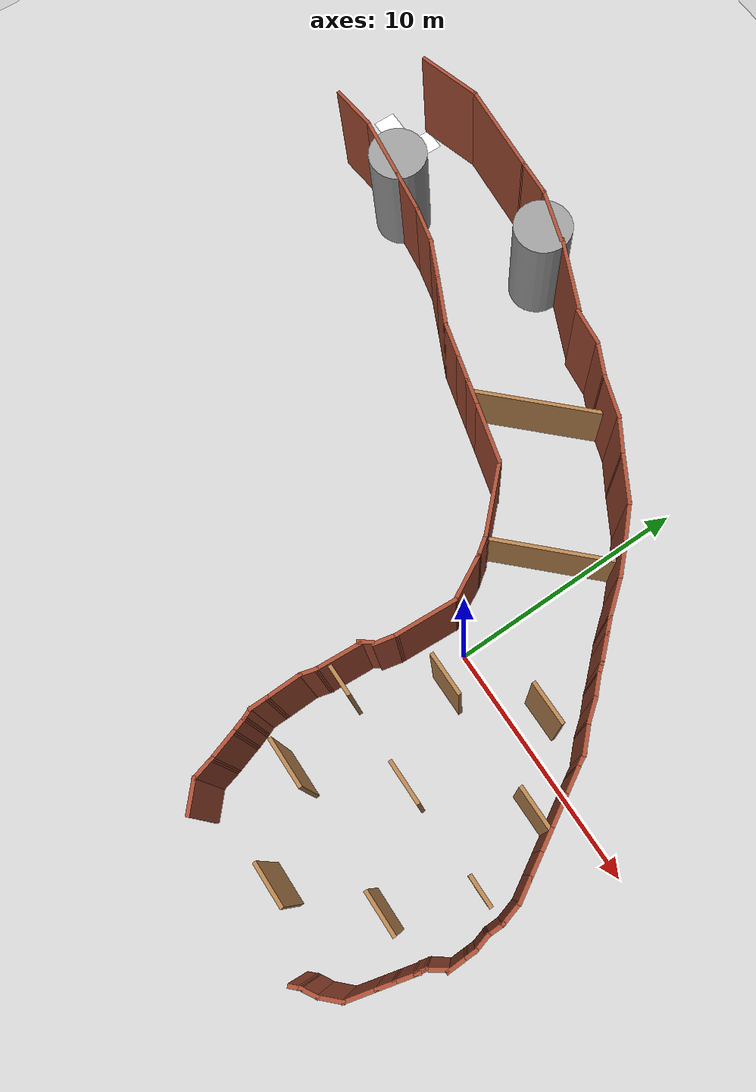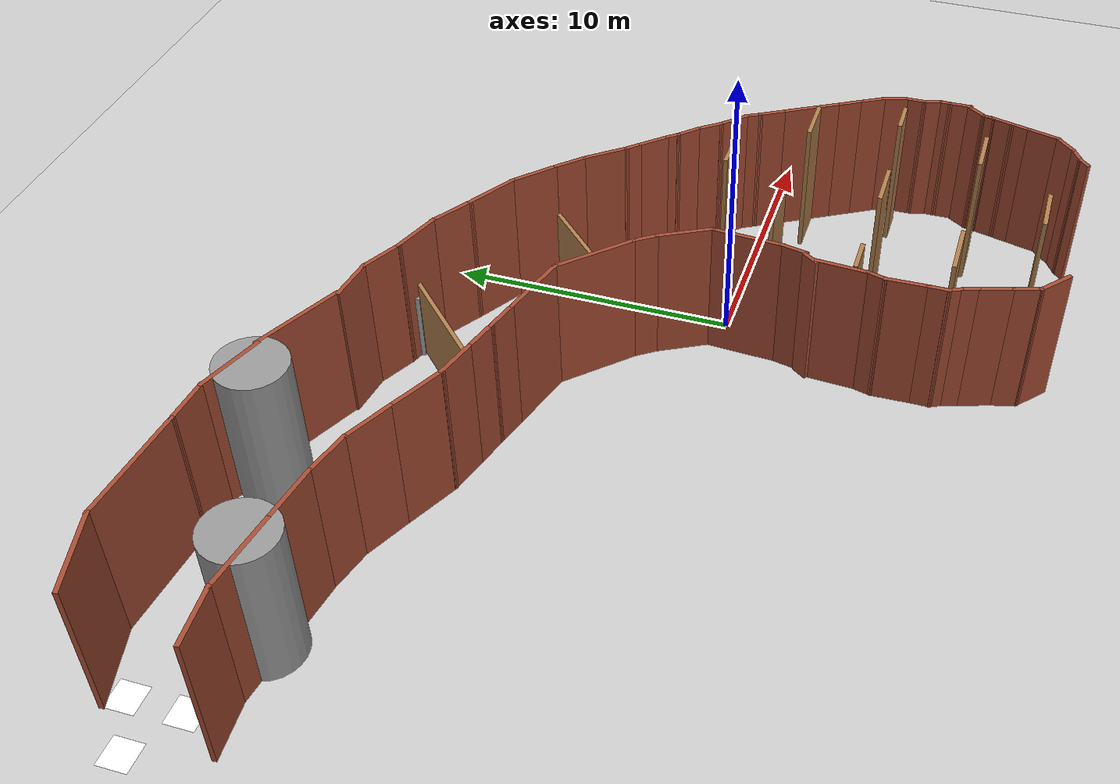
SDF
<sdf version="1.6">
 <world name="default">
  <light name="sun" type="directional">
   <pose>0 0 10 0 -0 0</pose>
   <diffuse>0.8 0.8 0.8 1</diffuse>
   <specular>0.2 0.2 0.2 1</specular>
   <attenuation>
    <range>1000</range>
    <constant>0.9</constant>
    <linear>0.01</linear>
    <quadratic>0.001</quadratic>
   </attenuation>
   <direction>-0.5 0.1 -0.9</direction>
  </light>
  <model name="ground_plane">
   <static>1</static>
   <link name="link">
    <collision name="collision">
     <geometry><plane><normal>0 0 1</normal><size>100 100</size></plane></geometry>
     <surface><friction><ode><mu>100</mu><mu2>50</mu2></ode></friction></surface>
    </collision>
    <visual name="visual">
     <cast_shadows>0</cast_shadows>
     <geometry><plane><normal>0 0 1</normal><size>100 100</size></plane></geometry>
     <material>
      <script><uri>file://media/materials/scripts/gazebo.material</uri><name>Gazebo/Grey</name></script>
     </material>
    </visual>
   </link>
  </model>
  <gravity>0 0 -9.8</gravity>
  <magnetic_field>6e-06 2.3e-05 -4.2e-05</magnetic_field>
  <atmosphere type="adiabatic"/>
  <physics name="default_physics" default="0" type="ode">
   <max_step_size>0.001</max_step_size>
   <real_time_factor>1</real_time_factor>
   <real_time_update_rate>1000</real_time_update_rate>
  </physics>
  <scene><ambient>0.4 0.4 0.4 1</ambient><background>0.7 0.7 0.7 1</background><shadows>1</shadows></scene>
  <spherical_coordinates>
   <surface_model>EARTH_WGS84</surface_model>
   <latitude_deg>0</latitude_deg>
   <longitude_deg>0</longitude_deg>
   <elevation>0</elevation>
   <heading_deg>0</heading_deg>
  </spherical_coordinates>
  <model name="testing_world2">
   <pose>-6.2826 1.00694 0 0 -0 0</pose>
   <link name="Wall_100">
    <collision name="Wall_100_Collision">
     <geometry><box><size>1.5 0.15 5</size></box></geometry>
     <pose>0 0 2.5 0 -0 0</pose>
    </collision>
    <visual name="Wall_100_Visual">
     <pose>0 0 2.5 0 -0 0</pose>
     <geometry><box><size>1.5 0.15 5</size></box></geometry>
     <material>
      <script><uri>file://media/materials/scripts/gazebo.material</uri><name>Gazebo/Bricks</name></script>
      <ambient>1 1 1 1</ambient>
     </material>
     <meta><layer>0</layer></meta>
    </visual>
    <pose>-3.2314 5.01256 0 0 -0 2.88008</pose>
   </link>
   <link name="Wall_101">
    <collision name="Wall_101_Collision">
     <geometry><box><size>2.1252 0.15 5</size></box></geometry>
     <pose>0 0 2.5 0 -0 0</pose>
    </collision>
    <visual name="Wall_101_Visual">
     <pose>0 0 2.5 0 -0 0</pose>
     <geometry><box><size>2.1252 0.15 5</size></box></geometry>
     <material>
      <script><uri>file://media/materials/scripts/gazebo.material</uri><name>Gazebo/Bricks</name></script>
      <ambient>1 1 1 1</ambient>
     </material>
     <meta><layer>0</layer></meta>
    </visual>
    <pose>-4.7744 5.61306 0 0 -0 2.69561</pose>
   </link>
   <link name="Wall_102">
    <collision name="Wall_102_Collision">
     <geometry><box><size>1.85518 0.15 5</size></box></geometry>
     <pose>0 0 2.5 0 -0 0</pose>
    </collision>
    <visual name="Wall_102_Visual">
     <pose>0 0 2.5 0 -0 0</pose>
     <geometry><box><size>1.85518 0.15 5</size></box></geometry>
     <material>
      <script><uri>file://media/materials/scripts/gazebo.material</uri><name>Gazebo/Bricks</name></script>
      <ambient>1 1 1 1</ambient>
     </material>
     <meta><layer>0</layer></meta>
    </visual>
    <pose>-6.4384 6.39856 0 0 -0 2.70628</pose>
   </link>
   <link name="Wall_103">
    <collision name="Wall_103_Collision">
     <geometry><box><size>1.67479 0.15 5</size></box></geometry>
     <pose>0 0 2.5 0 -0 0</pose>
    </collision>
    <visual name="Wall_103_Visual">
     <pose>0 0 2.5 0 -0 0</pose>
     <geometry><box><size>1.67479 0.15 5</size></box></geometry>
     <material>
      <script><uri>file://media/materials/scripts/gazebo.material</uri><name>Gazebo/Bricks</name></script>
      <ambient>1 1 1 1</ambient>
     </material>
     <meta><layer>0</layer></meta>
    </visual>
    <pose>-7.9534 6.93406 0 0 -0 2.9087</pose>
   </link>
   <link name="Wall_105">
    <collision name="Wall_105_Collision">
     <geometry><box><size>2.42474 0.15 5</size></box></geometry>
     <pose>0 0 2.5 0 -0 0</pose>
    </collision>
    <visual name="Wall_105_Visual">
     <pose>0 0 2.5 0 -0 0</pose>
     <geometry><box><size>2.42474 0.15 5</size></box></geometry>
     <material>
      <script><uri>file://media/materials/scripts/gazebo.material</uri><name>Gazebo/Bricks</name></script>
      <ambient>1 1 1 1</ambient>
     </material>
     <meta><layer>0</layer></meta>
    </visual>
    <pose>-5.40438 11.3274 0 0 -0 -0.324492</pose>
   </link>
   <link name="Wall_106">
    <collision name="Wall_106_Collision">
     <geometry><box><size>3.29315 0.15 5</size></box></geometry>
     <pose>0 0 2.5 0 -0 0</pose>
    </collision>
    <visual name="Wall_106_Visual">
     <pose>0 0 2.5 0 -0 0</pose>
     <geometry><box><size>3.29315 0.15 5</size></box></geometry>
     <material>
      <script><uri>file://media/materials/scripts/gazebo.material</uri><name>Gazebo/Bricks</name></script>
      <ambient>1 1 1 1</ambient>
     </material>
     <meta><layer>0</layer></meta>
    </visual>
    <pose>-2.89356 10.3806 0 0 -0 -0.423395</pose>
   </link>
   <link name="Wall_107">
    <collision name="Wall_107_Collision">
     <geometry><box><size>1.63925 0.15 5</size></box></geometry>
     <pose>0 0 2.5 0 -0 0</pose>
    </collision>
    <visual name="Wall_107_Visual">
     <pose>0 0 2.5 0 -0 0</pose>
     <geometry><box><size>1.63925 0.15 5</size></box></geometry>
     <material>
      <script><uri>file://media/materials/scripts/gazebo.material</uri><name>Gazebo/Bricks</name></script>
      <ambient>1 1 1 1</ambient>
     </material>
     <meta><layer>0</layer></meta>
    </visual>
    <pose>-0.721077 9.58774 0 0 -0 -0.11532</pose>
   </link>
   <link name="Wall_108">
    <collision name="Wall_108_Collision">
     <geometry><box><size>1.58734 0.15 5</size></box></geometry>
     <pose>0 0 2.5 0 -0 0</pose>
    </collision>
    <visual name="Wall_108_Visual">
     <pose>0 0 2.5 0 -0 0</pose>
     <geometry><box><size>1.58734 0.15 5</size></box></geometry>
     <material>
      <script><uri>file://media/materials/scripts/gazebo.material</uri><name>Gazebo/Bricks</name></script>
      <ambient>1 1 1 1</ambient>
     </material>
     <meta><layer>0</layer></meta>
    </visual>
    <pose>0.664603 9.18756 0 0 -0 -0.453066</pose>
   </link>
   <link name="Wall_109">
    <collision name="Wall_109_Collision">
     <geometry><box><size>1.84103 0.15 5</size></box></geometry>
     <pose>0 0 2.5 0 -0 0</pose>
    </collision>
    <visual name="Wall_109_Visual">
     <pose>0 0 2.5 0 -0 0</pose>
     <geometry><box><size>1.84103 0.15 5</size></box></geometry>
     <material>
      <script><uri>file://media/materials/scripts/gazebo.material</uri><name>Gazebo/Bricks</name></script>
      <ambient>1 1 1 1</ambient>
     </material>
     <meta><layer>0</layer></meta>
    </visual>
    <pose>2.1116 8.60306 0 0 -0 -0.325118</pose>
   </link>
   <link name="Wall_110">
    <collision name="Wall_110_Collision">
     <geometry><box><size>1.66428 0.15 5</size></box></geometry>
     <pose>0 0 2.5 0 -0 0</pose>
    </collision>
    <visual name="Wall_110_Visual">
     <pose>0 0 2.5 0 -0 0</pose>
     <geometry><box><size>1.66428 0.15 5</size></box></geometry>
     <material>
      <script><uri>file://media/materials/scripts/gazebo.material</uri><name>Gazebo/Bricks</name></script>
      <ambient>1 1 1 1</ambient>
     </material>
     <meta><layer>0</layer></meta>
    </visual>
    <pose>3.5586 7.93806 0 0 -0 -0.5488</pose>
   </link>
   <link name="Wall_111">
    <collision name="Wall_111_Collision">
     <geometry><box><size>1.99985 0.15 5</size></box></geometry>
     <pose>0 0 2.5 0 -0 0</pose>
    </collision>
    <visual name="Wall_111_Visual">
     <pose>0 0 2.5 0 -0 0</pose>
     <geometry><box><size>1.99985 0.15 5</size></box></geometry>
     <material>
      <script><uri>file://media/materials/scripts/gazebo.material</uri><name>Gazebo/Bricks</name></script>
      <ambient>1 1 1 1</ambient>
     </material>
     <meta><layer>0</layer></meta>
    </visual>
    <pose>5.0056 7.08006 0 0 -0 -0.524107</pose>
   </link>
   <link name="Wall_112">
    <collision name="Wall_112_Collision">
     <geometry><box><size>1.82407 0.15 5</size></box></geometry>
     <pose>0 0 2.5 0 -0 0</pose>
    </collision>
    <visual name="Wall_112_Visual">
     <pose>0 0 2.5 0 -0 0</pose>
     <geometry><box><size>1.82407 0.15 5</size></box></geometry>
     <material>
      <script><uri>file://media/materials/scripts/gazebo.material</uri><name>Gazebo/Bricks</name></script>
      <ambient>1 1 1 1</ambient>
     </material>
     <meta><layer>0</layer></meta>
    </visual>
    <pose>6.4191 6.04656 0 0 -0 -0.74991</pose>
   </link>
   <link name="Wall_113">
    <collision name="Wall_113_Collision">
     <geometry><box><size>1.25 0.15 5</size></box></geometry>
     <pose>0 0 2.5 0 -0 0</pose>
    </collision>
    <visual name="Wall_113_Visual">
     <pose>0 0 2.5 0 -0 0</pose>
     <geometry><box><size>1.25 0.15 5</size></box></geometry>
     <material>
      <script><uri>file://media/materials/scripts/gazebo.material</uri><name>Gazebo/Bricks</name></script>
      <ambient>1 1 1 1</ambient>
     </material>
     <meta><layer>0</layer></meta>
    </visual>
    <pose>7.4206 5.08706 0 0 -0 -0.785398</pose>
   </link>
   <link name="Wall_114">
    <collision name="Wall_114_Collision">
     <geometry><box><size>1.69801 0.15 5</size></box></geometry>
     <pose>0 0 2.5 0 -0 0</pose>
    </collision>
    <visual name="Wall_114_Visual">
     <pose>0 0 2.5 0 -0 0</pose>
     <geometry><box><size>1.69801 0.15 5</size></box></geometry>
     <material>
      <script><uri>file://media/materials/scripts/gazebo.material</uri><name>Gazebo/Bricks</name></script>
      <ambient>1 1 1 1</ambient>
     </material>
     <meta><layer>0</layer></meta>
    </visual>
    <pose>8.2976 4.09756 0 0 -0 -0.888386</pose>
   </link>
   <link name="Wall_115">
    <collision name="Wall_115_Collision">
     <geometry><box><size>0.730463 0.15 5</size></box></geometry>
     <pose>0 0 2.5 0 -0 0</pose>
    </collision>
    <visual name="Wall_115_Visual">
     <pose>0 0 2.5 0 -0 0</pose>
     <geometry><box><size>0.730463 0.15 5</size></box></geometry>
     <material>
      <script><uri>file://media/materials/scripts/gazebo.material</uri><name>Gazebo/Bricks</name></script>
      <ambient>1 1 1 1</ambient>
     </material>
     <meta><layer>0</layer></meta>
    </visual>
    <pose>8.9846 3.28556 0 0 -0 -0.815839</pose>
   </link>
   <link name="Wall_116">
    <collision name="Wall_116_Collision">
     <geometry><box><size>1.21135 0.15 5</size></box></geometry>
     <pose>0 0 2.5 0 -0 0</pose>
    </collision>
    <visual name="Wall_116_Visual">
     <pose>0 0 2.5 0 -0 0</pose>
     <geometry><box><size>1.21135 0.15 5</size></box></geometry>
     <material>
      <script><uri>file://media/materials/scripts/gazebo.material</uri><name>Gazebo/Bricks</name></script>
      <ambient>1 1 1 1</ambient>
     </material>
     <meta><layer>0</layer></meta>
    </visual>
    <pose>9.5451 2.68556 0 0 -0 -0.821383</pose>
   </link>
   <link name="Wall_117">
    <collision name="Wall_117_Collision">
     <geometry><box><size>0.545905 0.15 5</size></box></geometry>
     <pose>0 0 2.5 0 -0 0</pose>
    </collision>
    <visual name="Wall_117_Visual">
     <pose>0 0 2.5 0 -0 0</pose>
     <geometry><box><size>0.545905 0.15 5</size></box></geometry>
     <material>
      <script><uri>file://media/materials/scripts/gazebo.material</uri><name>Gazebo/Bricks</name></script>
      <ambient>1 1 1 1</ambient>
     </material>
     <meta><layer>0</layer></meta>
    </visual>
    <pose>10.0306 2.14256 0 0 -0 -0.894479</pose>
   </link>
   <link name="Wall_118">
    <collision name="Wall_118_Collision">
     <geometry><box><size>1 0.15 5</size></box></geometry>
     <pose>0 0 2.5 0 -0 0</pose>
    </collision>
    <visual name="Wall_118_Visual">
     <pose>0 0 2.5 0 -0 0</pose>
     <geometry><box><size>1 0.15 5</size></box></geometry>
     <material>
      <script><uri>file://media/materials/scripts/gazebo.material</uri><name>Gazebo/Bricks</name></script>
      <ambient>1 1 1 1</ambient>
     </material>
     <meta><layer>0</layer></meta>
    </visual>
    <pose>10.4551 1.68756 0 0 -0 -0.785398</pose>
   </link>
   <link name="Wall_119">
    <collision name="Wall_119_Collision">
     <geometry><box><size>0.997194 0.15 5</size></box></geometry>
     <pose>0 0 2.5 0 -0 0</pose>
    </collision>
    <visual name="Wall_119_Visual">
     <pose>0 0 2.5 0 -0 0</pose>
     <geometry><box><size>0.997194 0.15 5</size></box></geometry>
     <material>
      <script><uri>file://media/materials/scripts/gazebo.material</uri><name>Gazebo/Bricks</name></script>
      <ambient>1 1 1 1</ambient>
     </material>
     <meta><layer>0</layer></meta>
    </visual>
    <pose>11.0151 1.05206 0 0 -0 -0.911719</pose>
   </link>
   <link name="Wall_120">
    <collision name="Wall_120_Collision">
     <geometry><box><size>1.25 0.15 5</size></box></geometry>
     <pose>0 0 2.5 0 -0 0</pose>
    </collision>
    <visual name="Wall_120_Visual">
     <pose>0 0 2.5 0 -0 0</pose>
     <geometry><box><size>1.25 0.15 5</size></box></geometry>
     <material>
      <script><uri>file://media/materials/scripts/gazebo.material</uri><name>Gazebo/Bricks</name></script>
      <ambient>1 1 1 1</ambient>
     </material>
     <meta><layer>0</layer></meta>
    </visual>
    <pose>11.6636 0.328558 0 0 -0 -0.784755</pose>
   </link>
   <link name="Wall_122">
    <collision name="Wall_122_Collision">
     <geometry><box><size>2 0.15 5</size></box></geometry>
     <pose>0 0 2.5 0 -0 0</pose>
    </collision>
    <visual name="Wall_122_Visual">
     <pose>0 0 2.5 0 -0 0</pose>
     <geometry><box><size>2 0.15 5</size></box></geometry>
     <material>
      <script><uri>file://media/materials/scripts/gazebo.material</uri><name>Gazebo/Wood</name></script>
      <ambient>1 1 1 1</ambient>
     </material>
     <meta><layer>0</layer></meta>
    </visual>
    <pose>6.5146 -8.52794 0 0 -0 0</pose>
   </link>
   <link name="Wall_125">
    <collision name="Wall_125_Collision">
     <geometry><box><size>1.75 0.15 5</size></box></geometry>
     <pose>0 0 2.5 0 -0 0</pose>
    </collision>
    <visual name="Wall_125_Visual">
     <pose>0 0 2.5 0 -0 0</pose>
     <geometry><box><size>1.75 0.15 5</size></box></geometry>
     <material>
      <script><uri>file://media/materials/scripts/gazebo.material</uri><name>Gazebo/Wood</name></script>
      <ambient>1 1 1 1</ambient>
     </material>
     <meta><layer>0</layer></meta>
    </visual>
    <pose>9.5276 -11.0509 0 0 -0 0</pose>
   </link>
   <link name="Wall_127">
    <collision name="Wall_127_Collision">
     <geometry><box><size>1.75 0.15 5</size></box></geometry>
     <pose>0 0 2.5 0 -0 0</pose>
    </collision>
    <visual name="Wall_127_Visual">
     <pose>0 0 2.5 0 -0 0</pose>
     <geometry><box><size>1.75 0.15 5</size></box></geometry>
     <material>
      <script><uri>file://media/materials/scripts/gazebo.material</uri><name>Gazebo/Wood</name></script>
      <ambient>1 1 1 1</ambient>
     </material>
     <meta><layer>0</layer></meta>
    </visual>
    <pose>12.3496 -8.52794 0 0 -0 0</pose>
   </link>
   <link name="Wall_128">
    <collision name="Wall_128_Collision">
     <geometry><box><size>0.15 0.15 2.5</size></box></geometry>
     <pose>0 0 1.25 0 -0 0</pose>
    </collision>
    <visual name="Wall_128_Visual">
     <pose>0 0 1.25 0 -0 0</pose>
     <geometry><box><size>0.15 0.15 2.5</size></box></geometry>
     <material>
      <script><uri>file://media/materials/scripts/gazebo.material</uri><name>Gazebo/Grey</name></script>
      <ambient>1 1 1 1</ambient>
     </material>
     <meta><layer>0</layer></meta>
    </visual>
    <pose>13.1496 -8.52794 0 0 -0 0</pose>
   </link>
   <link name="Wall_130">
    <collision name="Wall_130_Collision">
     <geometry><box><size>1.75 0.15 5</size></box></geometry>
     <pose>0 0 2.5 0 -0 0</pose>
    </collision>
    <visual name="Wall_130_Visual">
     <pose>0 0 2.5 0 -0 0</pose>
     <geometry><box><size>1.75 0.15 5</size></box></geometry>
     <material>
      <script><uri>file://media/materials/scripts/gazebo.material</uri><name>Gazebo/Wood</name></script>
      <ambient>1 1 1 1</ambient>
     </material>
     <meta><layer>0</layer></meta>
    </visual>
    <pose>9.3426 -5.57494 0 0 -0 0</pose>
   </link>
   <link name="Wall_132">
    <collision name="Wall_132_Collision">
     <geometry><box><size>1.25 0.15 5</size></box></geometry>
     <pose>0 0 2.5 0 -0 0</pose>
    </collision>
    <visual name="Wall_132_Visual">
     <pose>0 0 2.5 0 -0 0</pose>
     <geometry><box><size>1.25 0.15 5</size></box></geometry>
     <material>
      <script><uri>file://media/materials/scripts/gazebo.material</uri><name>Gazebo/Wood</name></script>
      <ambient>1 1 1 1</ambient>
     </material>
     <meta><layer>0</layer></meta>
    </visual>
    <pose>5.2236 -5.51294 0 0 -0 3.14159</pose>
   </link>
   <link name="Wall_134">
    <collision name="Wall_134_Collision">
     <geometry><box><size>1.25 0.15 5</size></box></geometry>
     <pose>0 0 2.5 0 -0 0</pose>
    </collision>
    <visual name="Wall_134_Visual">
     <pose>0 0 2.5 0 -0 0</pose>
     <geometry><box><size>1.25 0.15 5</size></box></geometry>
     <material>
      <script><uri>file://media/materials/scripts/gazebo.material</uri><name>Gazebo/Wood</name></script>
      <ambient>1 1 1 1</ambient>
     </material>
     <meta><layer>0</layer></meta>
    </visual>
    <pose>13.6456 -5.45094 0 0 -0 0</pose>
   </link>
   <link name="Wall_136">
    <collision name="Wall_136_Collision">
     <geometry><box><size>1.75 0.15 5</size></box></geometry>
     <pose>0 0 2.5 0 -0 0</pose>
    </collision>
    <visual name="Wall_136_Visual">
     <pose>0 0 2.5 0 -0 0</pose>
     <geometry><box><size>1.75 0.15 5</size></box></geometry>
     <material>
      <script><uri>file://media/materials/scripts/gazebo.material</uri><name>Gazebo/Wood</name></script>
      <ambient>1 1 1 1</ambient>
     </material>
     <meta><layer>0</layer></meta>
    </visual>
    <pose>7.1276 -2.37494 0 0 -0 0</pose>
   </link>
   <link name="Wall_138">
    <collision name="Wall_138_Collision">
     <geometry><box><size>1.75 0.15 5</size></box></geometry>
     <pose>0 0 2.5 0 -0 0</pose>
    </collision>
    <visual name="Wall_138_Visual">
     <pose>0 0 2.5 0 -0 0</pose>
     <geometry><box><size>1.75 0.15 5</size></box></geometry>
     <material>
      <script><uri>file://media/materials/scripts/gazebo.material</uri><name>Gazebo/Wood</name></script>
      <ambient>1 1 1 1</ambient>
     </material>
     <meta><layer>0</layer></meta>
    </visual>
    <pose>12.5426 -2.43694 0 0 -0 0</pose>
   </link>
   <link name="Wall_140">
    <collision name="Wall_140_Collision">
     <geometry><box><size>1.75 0.15 5</size></box></geometry>
     <pose>0 0 2.5 0 -0 0</pose>
    </collision>
    <visual name="Wall_140_Visual">
     <pose>0 0 2.5 0 -0 0</pose>
     <geometry><box><size>1.75 0.15 5</size></box></geometry>
     <material>
      <script><uri>file://media/materials/scripts/gazebo.material</uri><name>Gazebo/Wood</name></script>
      <ambient>1 1 1 1</ambient>
     </material>
     <meta><layer>0</layer></meta>
    </visual>
    <pose>9.9586 -0.036942 0 0 -0 0</pose>
   </link>
   <link name="Wall_142">
    <collision name="Wall_142_Collision">
     <geometry><box><size>5 0.15 3</size></box></geometry>
     <pose>0 0 1.5 0 -0 0</pose>
    </collision>
    <visual name="Wall_142_Visual">
     <pose>0 0 1.5 0 -0 0</pose>
     <geometry><box><size>5 0.15 3</size></box></geometry>
     <material>
      <script><uri>file://media/materials/scripts/gazebo.material</uri><name>Gazebo/Wood</name></script>
      <ambient>1 1 1 1</ambient>
     </material>
     <meta><layer>0</layer></meta>
    </visual>
    <pose>5.3171 3.76156 0 0 -0 -2.35619</pose>
   </link>
   <link name="Wall_144">
    <collision name="Wall_144_Collision">
     <geometry><box><size>5.75 0.15 3</size></box></geometry>
     <pose>0 0 1.5 0 -0 0</pose>
    </collision>
    <visual name="Wall_144_Visual">
     <pose>0 0 1.5 0 -0 0</pose>
     <geometry><box><size>5.75 0.15 3</size></box></geometry>
     <material>
      <script><uri>file://media/materials/scripts/gazebo.material</uri><name>Gazebo/Wood</name></script>
      <ambient>1 1 1 1</ambient>
     </material>
     <meta><layer>0</layer></meta>
    </visual>
    <pose>0.080438 6.77407 0 0 -0 -2.35619</pose>
   </link>
   <link name="Wall_146">
    <collision name="Wall_146_Collision">
     <geometry><box><size>1.64622 0.15 5</size></box></geometry>
     <pose>0 0 2.5 0 -0 0</pose>
    </collision>
    <visual name="Wall_146_Visual">
     <pose>0 0 2.5 0 -0 0</pose>
     <geometry><box><size>1.64622 0.15 5</size></box></geometry>
     <material>
      <script><uri>file://media/materials/scripts/gazebo.material</uri><name>Gazebo/Bricks</name></script>
      <ambient>1 1 1 1</ambient>
     </material>
     <meta><layer>0</layer></meta>
    </visual>
    <pose>-7.2289 11.7401 0 0 -0 3.07471</pose>
   </link>
   <link name="Wall_147">
    <collision name="Wall_147_Collision">
     <geometry><box><size>4.0618 0.15 5</size></box></geometry>
     <pose>0 0 2.5 0 -0 0</pose>
    </collision>
    <visual name="Wall_147_Visual">
     <pose>0 0 2.5 0 -0 0</pose>
     <geometry><box><size>4.0618 0.15 5</size></box></geometry>
     <material>
      <script><uri>file://media/materials/scripts/gazebo.material</uri><name>Gazebo/Bricks</name></script>
      <ambient>1 1 1 1</ambient>
     </material>
     <meta><layer>0</layer></meta>
    </visual>
    <pose>-9.9254 11.9441 0 0 -0 3.06278</pose>
   </link>
   <link name="Wall_148">
    <collision name="Wall_148_Collision">
     <geometry><box><size>2.84532 0.15 5</size></box></geometry>
     <pose>0 0 2.5 0 -0 0</pose>
    </collision>
    <visual name="Wall_148_Visual">
     <pose>0 0 2.5 0 -0 0</pose>
     <geometry><box><size>2.84532 0.15 5</size></box></geometry>
     <material>
      <script><uri>file://media/materials/scripts/gazebo.material</uri><name>Gazebo/Bricks</name></script>
      <ambient>1 1 1 1</ambient>
     </material>
     <meta><layer>0</layer></meta>
    </visual>
    <pose>-13.1714 11.7286 0 0 -0 -2.86385</pose>
   </link>
   <link name="Wall_150">
    <collision name="Wall_150_Collision">
     <geometry><box><size>1.95108 0.15 5</size></box></geometry>
     <pose>0 0 2.5 0 -0 0</pose>
    </collision>
    <visual name="Wall_150_Visual">
     <pose>0 0 2.5 0 -0 0</pose>
     <geometry><box><size>1.95108 0.15 5</size></box></geometry>
     <material>
      <script><uri>file://media/materials/scripts/gazebo.material</uri><name>Gazebo/Bricks</name></script>
      <ambient>1 1 1 1</ambient>
     </material>
     <meta><layer>0</layer></meta>
    </visual>
    <pose>-9.5874 7.23306 0 0 -0 3.00456</pose>
   </link>
   <link name="Wall_151">
    <collision name="Wall_151_Collision">
     <geometry><box><size>2.87083 0.15 5</size></box></geometry>
     <pose>0 0 2.5 0 -0 0</pose>
    </collision>
    <visual name="Wall_151_Visual">
     <pose>0 0 2.5 0 -0 0</pose>
     <geometry><box><size>2.87083 0.15 5</size></box></geometry>
     <material>
      <script><uri>file://media/materials/scripts/gazebo.material</uri><name>Gazebo/Bricks</name></script>
      <ambient>1 1 1 1</ambient>
     </material>
     <meta><layer>0</layer></meta>
    </visual>
    <pose>-11.8274 7.53856 0 0 -0 3.00703</pose>
   </link>
   <link name="Wall_152">
    <collision name="Wall_152_Collision">
     <geometry><box><size>2.03705 0.15 5</size></box></geometry>
     <pose>0 0 2.5 0 -0 0</pose>
    </collision>
    <visual name="Wall_152_Visual">
     <pose>0 0 2.5 0 -0 0</pose>
     <geometry><box><size>2.03705 0.15 5</size></box></geometry>
     <material>
      <script><uri>file://media/materials/scripts/gazebo.material</uri><name>Gazebo/Bricks</name></script>
      <ambient>1 1 1 1</ambient>
     </material>
     <meta><layer>0</layer></meta>
    </visual>
    <pose>-14.1144 7.62906 0 0 -0 -3.04393</pose>
   </link>
   <link name="Wall_52">
    <collision name="Wall_52_Collision">
     <geometry><box><size>0.557596 0.15 2.5</size></box></geometry>
     <pose>0 0 1.25 0 -0 0</pose>
    </collision>
    <visual name="Wall_52_Visual">
     <pose>0 0 1.25 0 -0 0</pose>
     <geometry><box><size>0.557596 0.15 2.5</size></box></geometry>
     <material>
      <script><uri>file://media/materials/scripts/gazebo.material</uri><name>Gazebo/Grey</name></script>
      <ambient>1 1 1 1</ambient>
     </material>
     <meta><layer>0</layer></meta>
    </visual>
    <pose>1.91079 8.72071 0 0 -0 -2.77151</pose>
   </link>
   <link name="Wall_58">
    <collision name="Wall_58_Collision">
     <geometry><box><size>0.5 0.15 5</size></box></geometry>
     <pose>0 0 2.5 0 -0 0</pose>
    </collision>
    <visual name="Wall_58_Visual">
     <pose>0 0 2.5 0 -0 0</pose>
     <geometry><box><size>0.5 0.15 5</size></box></geometry>
     <material>
      <script><uri>file://media/materials/scripts/gazebo.material</uri><name>Gazebo/Bricks</name></script>
      <ambient>1 1 1 1</ambient>
     </material>
     <meta><layer>0</layer></meta>
    </visual>
    <pose>12.6456 -11.9609 0 0 -0 0.785398</pose>
   </link>
   <link name="Wall_59">
    <collision name="Wall_59_Collision">
     <geometry><box><size>0.75 0.15 5</size></box></geometry>
     <pose>0 0 2.5 0 -0 0</pose>
    </collision>
    <visual name="Wall_59_Visual">
     <pose>0 0 2.5 0 -0 0</pose>
     <geometry><box><size>0.75 0.15 5</size></box></geometry>
     <material>
      <script><uri>file://media/materials/scripts/gazebo.material</uri><name>Gazebo/Bricks</name></script>
      <ambient>1 1 1 1</ambient>
     </material>
     <meta><layer>0</layer></meta>
    </visual>
    <pose>13.0291 -11.6869 0 0 -0 0.524112</pose>
   </link>
   <link name="Wall_60">
    <collision name="Wall_60_Collision">
     <geometry><box><size>1 0.15 5</size></box></geometry>
     <pose>0 0 2.5 0 -0 0</pose>
    </collision>
    <visual name="Wall_60_Visual">
     <pose>0 0 2.5 0 -0 0</pose>
     <geometry><box><size>1 0.15 5</size></box></geometry>
     <material>
      <script><uri>file://media/materials/scripts/gazebo.material</uri><name>Gazebo/Bricks</name></script>
      <ambient>1 1 1 1</ambient>
     </material>
     <meta><layer>0</layer></meta>
    </visual>
    <pose>13.5891 -11.2364 0 0 -0 0.785398</pose>
   </link>
   <link name="Wall_61">
    <collision name="Wall_61_Collision">
     <geometry><box><size>1.25 0.15 5</size></box></geometry>
     <pose>0 0 2.5 0 -0 0</pose>
    </collision>
    <visual name="Wall_61_Visual">
     <pose>0 0 2.5 0 -0 0</pose>
     <geometry><box><size>1.25 0.15 5</size></box></geometry>
     <material>
      <script><uri>file://media/materials/scripts/gazebo.material</uri><name>Gazebo/Bricks</name></script>
      <ambient>1 1 1 1</ambient>
     </material>
     <meta><layer>0</layer></meta>
    </visual>
    <pose>14.0321 -10.4049 0 0 -0 1.30861</pose>
   </link>
   <link name="Wall_62">
    <collision name="Wall_62_Collision">
     <geometry><box><size>0.75 0.15 5</size></box></geometry>
     <pose>0 0 2.5 0 -0 0</pose>
    </collision>
    <visual name="Wall_62_Visual">
     <pose>0 0 2.5 0 -0 0</pose>
     <geometry><box><size>0.75 0.15 5</size></box></geometry>
     <material>
      <script><uri>file://media/materials/scripts/gazebo.material</uri><name>Gazebo/Bricks</name></script>
      <ambient>1 1 1 1</ambient>
     </material>
     <meta><layer>0</layer></meta>
    </visual>
    <pose>14.2521 -9.58394 0 0 -0 1.30966</pose>
   </link>
   <link name="Wall_63">
    <collision name="Wall_63_Collision">
     <geometry><box><size>1 0.15 5</size></box></geometry>
     <pose>0 0 2.5 0 -0 0</pose>
    </collision>
    <visual name="Wall_63_Visual">
     <pose>0 0 2.5 0 -0 0</pose>
     <geometry><box><size>1 0.15 5</size></box></geometry>
     <material>
      <script><uri>file://media/materials/scripts/gazebo.material</uri><name>Gazebo/Bricks</name></script>
      <ambient>1 1 1 1</ambient>
     </material>
     <meta><layer>0</layer></meta>
    </visual>
    <pose>14.4396 -8.88344 0 0 -0 1.30898</pose>
   </link>
   <link name="Wall_64">
    <collision name="Wall_64_Collision">
     <geometry><box><size>0.269614 0.15 5</size></box></geometry>
     <pose>0 0 2.5 0 -0 0</pose>
    </collision>
    <visual name="Wall_64_Visual">
     <pose>0 0 2.5 0 -0 0</pose>
     <geometry><box><size>0.269614 0.15 5</size></box></geometry>
     <material>
      <script><uri>file://media/materials/scripts/gazebo.material</uri><name>Gazebo/Bricks</name></script>
      <ambient>1 1 1 1</ambient>
     </material>
     <meta><layer>0</layer></meta>
    </visual>
    <pose>14.5216 -8.5258 0 0 -0 -2.05762</pose>
   </link>
   <link name="Wall_65">
    <collision name="Wall_65_Collision">
     <geometry><box><size>0.5 0.15 5</size></box></geometry>
     <pose>0 0 2.5 0 -0 0</pose>
    </collision>
    <visual name="Wall_65_Visual">
     <pose>0 0 2.5 0 -0 0</pose>
     <geometry><box><size>0.5 0.15 5</size></box></geometry>
     <material>
      <script><uri>file://media/materials/scripts/gazebo.material</uri><name>Gazebo/Bricks</name></script>
      <ambient>1 1 1 1</ambient>
     </material>
     <meta><layer>0</layer></meta>
    </visual>
    <pose>14.5389 -8.40962 0 0 -0 1.309</pose>
   </link>
   <link name="Wall_66">
    <collision name="Wall_66_Collision">
     <geometry><box><size>0.814358 0.15 5</size></box></geometry>
     <pose>0 0 2.5 0 -0 0</pose>
    </collision>
    <visual name="Wall_66_Visual">
     <pose>0 0 2.5 0 -0 0</pose>
     <geometry><box><size>0.814358 0.15 5</size></box></geometry>
     <material>
      <script><uri>file://media/materials/scripts/gazebo.material</uri><name>Gazebo/Bricks</name></script>
      <ambient>1 1 1 1</ambient>
     </material>
     <meta><layer>0</layer></meta>
    </visual>
    <pose>14.7771 -7.97013 0 0 -0 0.951303</pose>
   </link>
   <link name="Wall_67">
    <collision name="Wall_67_Collision">
     <geometry><box><size>0.891782 0.15 5</size></box></geometry>
     <pose>0 0 2.5 0 -0 0</pose>
    </collision>
    <visual name="Wall_67_Visual">
     <pose>0 0 2.5 0 -0 0</pose>
     <geometry><box><size>0.891782 0.15 5</size></box></geometry>
     <material>
      <script><uri>file://media/materials/scripts/gazebo.material</uri><name>Gazebo/Bricks</name></script>
      <ambient>1 1 1 1</ambient>
     </material>
     <meta><layer>0</layer></meta>
    </visual>
    <pose>15.0475 -7.32881 0 0 -0 1.58123</pose>
   </link>
   <link name="Wall_68">
    <collision name="Wall_68_Collision">
     <geometry><box><size>0.5 0.15 5</size></box></geometry>
     <pose>0 0 2.5 0 -0 0</pose>
    </collision>
    <visual name="Wall_68_Visual">
     <pose>0 0 2.5 0 -0 0</pose>
     <geometry><box><size>0.5 0.15 5</size></box></geometry>
     <material>
      <script><uri>file://media/materials/scripts/gazebo.material</uri><name>Gazebo/Bricks</name></script>
      <ambient>1 1 1 1</ambient>
     </material>
     <meta><layer>0</layer></meta>
    </visual>
    <pose>15.0436 -6.78294 0 0 -0 1.5708</pose>
   </link>
   <link name="Wall_69">
    <collision name="Wall_69_Collision">
     <geometry><box><size>0.75 0.15 5</size></box></geometry>
     <pose>0 0 2.5 0 -0 0</pose>
    </collision>
    <visual name="Wall_69_Visual">
     <pose>0 0 2.5 0 -0 0</pose>
     <geometry><box><size>0.75 0.15 5</size></box></geometry>
     <material>
      <script><uri>file://media/materials/scripts/gazebo.material</uri><name>Gazebo/Bricks</name></script>
      <ambient>1 1 1 1</ambient>
     </material>
     <meta><layer>0</layer></meta>
    </visual>
    <pose>14.9661 -6.31794 0 0 -0 1.83194</pose>
   </link>
   <link name="Wall_70">
    <collision name="Wall_70_Collision">
     <geometry><box><size>0.75 0.15 5</size></box></geometry>
     <pose>0 0 2.5 0 -0 0</pose>
    </collision>
    <visual name="Wall_70_Visual">
     <pose>0 0 2.5 0 -0 0</pose>
     <geometry><box><size>0.75 0.15 5</size></box></geometry>
     <material>
      <script><uri>file://media/materials/scripts/gazebo.material</uri><name>Gazebo/Bricks</name></script>
      <ambient>1 1 1 1</ambient>
     </material>
     <meta><layer>0</layer></meta>
    </visual>
    <pose>14.8886 -5.72794 0 0 -0 1.5708</pose>
   </link>
   <link name="Wall_71">
    <collision name="Wall_71_Collision">
     <geometry><box><size>1 0.15 5</size></box></geometry>
     <pose>0 0 2.5 0 -0 0</pose>
    </collision>
    <visual name="Wall_71_Visual">
     <pose>0 0 2.5 0 -0 0</pose>
     <geometry><box><size>1 0.15 5</size></box></geometry>
     <material>
      <script><uri>file://media/materials/scripts/gazebo.material</uri><name>Gazebo/Bricks</name></script>
      <ambient>1 1 1 1</ambient>
     </material>
     <meta><layer>0</layer></meta>
    </visual>
    <pose>14.7786 -5.01744 0 0 -0 1.83261</pose>
   </link>
   <link name="Wall_72">
    <collision name="Wall_72_Collision">
     <geometry><box><size>1 0.15 5</size></box></geometry>
     <pose>0 0 2.5 0 -0 0</pose>
    </collision>
    <visual name="Wall_72_Visual">
     <pose>0 0 2.5 0 -0 0</pose>
     <geometry><box><size>1 0.15 5</size></box></geometry>
     <material>
      <script><uri>file://media/materials/scripts/gazebo.material</uri><name>Gazebo/Bricks</name></script>
      <ambient>1 1 1 1</ambient>
     </material>
     <meta><layer>0</layer></meta>
    </visual>
    <pose>14.4561 -4.23894 0 0 -0 2.09447</pose>
   </link>
   <link name="Wall_73">
    <collision name="Wall_73_Collision">
     <geometry><box><size>1 0.15 5</size></box></geometry>
     <pose>0 0 2.5 0 -0 0</pose>
    </collision>
    <visual name="Wall_73_Visual">
     <pose>0 0 2.5 0 -0 0</pose>
     <geometry><box><size>1 0.15 5</size></box></geometry>
     <material>
      <script><uri>file://media/materials/scripts/gazebo.material</uri><name>Gazebo/Bricks</name></script>
      <ambient>1 1 1 1</ambient>
     </material>
     <meta><layer>0</layer></meta>
    </visual>
    <pose>14.0311 -3.50294 0 0 -0 2.09447</pose>
   </link>
   <link name="Wall_74">
    <collision name="Wall_74_Collision">
     <geometry><box><size>1 0.15 5</size></box></geometry>
     <pose>0 0 2.5 0 -0 0</pose>
    </collision>
    <visual name="Wall_74_Visual">
     <pose>0 0 2.5 0 -0 0</pose>
     <geometry><box><size>1 0.15 5</size></box></geometry>
     <material>
      <script><uri>file://media/materials/scripts/gazebo.material</uri><name>Gazebo/Bricks</name></script>
      <ambient>1 1 1 1</ambient>
     </material>
     <meta><layer>0</layer></meta>
    </visual>
    <pose>13.6061 -2.76694 0 0 -0 2.09447</pose>
   </link>
   <link name="Wall_75">
    <collision name="Wall_75_Collision">
     <geometry><box><size>1.5 0.15 5</size></box></geometry>
     <pose>0 0 2.5 0 -0 0</pose>
    </collision>
    <visual name="Wall_75_Visual">
     <pose>0 0 2.5 0 -0 0</pose>
     <geometry><box><size>1.5 0.15 5</size></box></geometry>
     <material>
      <script><uri>file://media/materials/scripts/gazebo.material</uri><name>Gazebo/Bricks</name></script>
      <ambient>1 1 1 1</ambient>
     </material>
     <meta><layer>0</layer></meta>
    </visual>
    <pose>13.0561 -1.81444 0 0 -0 2.09444</pose>
   </link>
   <link name="Wall_76">
    <collision name="Wall_76_Collision">
     <geometry><box><size>1 0.15 5</size></box></geometry>
     <pose>0 0 2.5 0 -0 0</pose>
    </collision>
    <visual name="Wall_76_Visual">
     <pose>0 0 2.5 0 -0 0</pose>
     <geometry><box><size>1 0.15 5</size></box></geometry>
     <material>
      <script><uri>file://media/materials/scripts/gazebo.material</uri><name>Gazebo/Bricks</name></script>
      <ambient>1 1 1 1</ambient>
     </material>
     <meta><layer>0</layer></meta>
    </visual>
    <pose>12.5061 -0.861942 0 0 -0 2.09447</pose>
   </link>
   <link name="Wall_77">
    <collision name="Wall_77_Collision">
     <geometry><box><size>0.646424 0.15 5</size></box></geometry>
     <pose>0 0 2.5 0 -0 0</pose>
    </collision>
    <visual name="Wall_77_Visual">
     <pose>0 0 2.5 0 -0 0</pose>
     <geometry><box><size>0.646424 0.15 5</size></box></geometry>
     <material>
      <script><uri>file://media/materials/scripts/gazebo.material</uri><name>Gazebo/Bricks</name></script>
      <ambient>1 1 1 1</ambient>
     </material>
     <meta><layer>0</layer></meta>
    </visual>
    <pose>12.1731 -0.276942 0 0 -0 2.0777</pose>
   </link>
   <link name="Wall_82">
    <collision name="Wall_82_Collision">
     <geometry><box><size>1.3402 0.15 5</size></box></geometry>
     <pose>0 0 2.5 0 -0 0</pose>
    </collision>
    <visual name="Wall_82_Visual">
     <pose>0 0 2.5 0 -0 0</pose>
     <geometry><box><size>1.3402 0.15 5</size></box></geometry>
     <material>
      <script><uri>file://media/materials/scripts/gazebo.material</uri><name>Gazebo/Bricks</name></script>
      <ambient>1 1 1 1</ambient>
     </material>
     <meta><layer>0</layer></meta>
    </visual>
    <pose>5.6661 -11.6959 0 0 -0 2.42932</pose>
   </link>
   <link name="Wall_83">
    <collision name="Wall_83_Collision">
     <geometry><box><size>1.00014 0.15 5</size></box></geometry>
     <pose>0 0 2.5 0 -0 0</pose>
    </collision>
    <visual name="Wall_83_Visual">
     <pose>0 0 2.5 0 -0 0</pose>
     <geometry><box><size>1.00014 0.15 5</size></box></geometry>
     <material>
      <script><uri>file://media/materials/scripts/gazebo.material</uri><name>Gazebo/Bricks</name></script>
      <ambient>1 1 1 1</ambient>
     </material>
     <meta><layer>0</layer></meta>
    </visual>
    <pose>5.1056 -10.8964 0 0 -0 1.83261</pose>
   </link>
   <link name="Wall_84">
    <collision name="Wall_84_Collision">
     <geometry><box><size>1.26767 0.15 5</size></box></geometry>
     <pose>0 0 2.5 0 -0 0</pose>
    </collision>
    <visual name="Wall_84_Visual">
     <pose>0 0 2.5 0 -0 0</pose>
     <geometry><box><size>1.26767 0.15 5</size></box></geometry>
     <material>
      <script><uri>file://media/materials/scripts/gazebo.material</uri><name>Gazebo/Bricks</name></script>
      <ambient>1 1 1 1</ambient>
     </material>
     <meta><layer>0</layer></meta>
    </visual>
    <pose>4.8226 -9.95444 0 0 -0 1.88548</pose>
   </link>
   <link name="Wall_85">
    <collision name="Wall_85_Collision">
     <geometry><box><size>0.718919 0.15 5</size></box></geometry>
     <pose>0 0 2.5 0 -0 0</pose>
    </collision>
    <visual name="Wall_85_Visual">
     <pose>0 0 2.5 0 -0 0</pose>
     <geometry><box><size>0.718919 0.15 5</size></box></geometry>
     <material>
      <script><uri>file://media/materials/scripts/gazebo.material</uri><name>Gazebo/Bricks</name></script>
      <ambient>1 1 1 1</ambient>
     </material>
     <meta><layer>0</layer></meta>
    </visual>
    <pose>4.5571 -9.15394 0 0 -0 1.902</pose>
   </link>
   <link name="Wall_86">
    <collision name="Wall_86_Collision">
     <geometry><box><size>0.516599 0.15 5</size></box></geometry>
     <pose>0 0 2.5 0 -0 0</pose>
    </collision>
    <visual name="Wall_86_Visual">
     <pose>0 0 2.5 0 -0 0</pose>
     <geometry><box><size>0.516599 0.15 5</size></box></geometry>
     <material>
      <script><uri>file://media/materials/scripts/gazebo.material</uri><name>Gazebo/Bricks</name></script>
      <ambient>1 1 1 1</ambient>
     </material>
     <meta><layer>0</layer></meta>
    </visual>
    <pose>4.3886 -8.71794 0 0 -0 1.99788</pose>
   </link>
   <link name="Wall_87">
    <collision name="Wall_87_Collision">
     <geometry><box><size>0.815074 0.15 5</size></box></geometry>
     <pose>0 0 2.5 0 -0 0</pose>
    </collision>
    <visual name="Wall_87_Visual">
     <pose>0 0 2.5 0 -0 0</pose>
     <geometry><box><size>0.815074 0.15 5</size></box></geometry>
     <material>
      <script><uri>file://media/materials/scripts/gazebo.material</uri><name>Gazebo/Bricks</name></script>
      <ambient>1 1 1 1</ambient>
     </material>
     <meta><layer>0</layer></meta>
    </visual>
    <pose>4.3126 -8.21844 0 0 -0 1.5708</pose>
   </link>
   <link name="Wall_88">
    <collision name="Wall_88_Collision">
     <geometry><box><size>1.498 0.15 5</size></box></geometry>
     <pose>0 0 2.5 0 -0 0</pose>
    </collision>
    <visual name="Wall_88_Visual">
     <pose>0 0 2.5 0 -0 0</pose>
     <geometry><box><size>1.498 0.15 5</size></box></geometry>
     <material>
      <script><uri>file://media/materials/scripts/gazebo.material</uri><name>Gazebo/Bricks</name></script>
      <ambient>1 1 1 1</ambient>
     </material>
     <meta><layer>0</layer></meta>
    </visual>
    <pose>4.3001 -7.21194 0 0 -0 1.58934</pose>
   </link>
   <link name="Wall_89">
    <collision name="Wall_89_Collision">
     <geometry><box><size>0.75 0.15 5</size></box></geometry>
     <pose>0 0 2.5 0 -0 0</pose>
    </collision>
    <visual name="Wall_89_Visual">
     <pose>0 0 2.5 0 -0 0</pose>
     <geometry><box><size>0.75 0.15 5</size></box></geometry>
     <material>
      <script><uri>file://media/materials/scripts/gazebo.material</uri><name>Gazebo/Bricks</name></script>
      <ambient>1 1 1 1</ambient>
     </material>
     <meta><layer>0</layer></meta>
    </visual>
    <pose>4.3656 -6.24844 0 0 -0 1.30762</pose>
   </link>
   <link name="Wall_90">
    <collision name="Wall_90_Collision">
     <geometry><box><size>1.86911 0.15 5</size></box></geometry>
     <pose>0 0 2.5 0 -0 0</pose>
    </collision>
    <visual name="Wall_90_Visual">
     <pose>0 0 2.5 0 -0 0</pose>
     <geometry><box><size>1.86911 0.15 5</size></box></geometry>
     <material>
      <script><uri>file://media/materials/scripts/gazebo.material</uri><name>Gazebo/Bricks</name></script>
      <ambient>1 1 1 1</ambient>
     </material>
     <meta><layer>0</layer></meta>
    </visual>
    <pose>4.50297 -5.10144 0 0 -0 1.50167</pose>
   </link>
   <link name="Wall_91">
    <collision name="Wall_91_Collision">
     <geometry><box><size>0.637311 0.15 5</size></box></geometry>
     <pose>0 0 2.5 0 -0 0</pose>
    </collision>
    <visual name="Wall_91_Visual">
     <pose>0 0 2.5 0 -0 0</pose>
     <geometry><box><size>0.637311 0.15 5</size></box></geometry>
     <material>
      <script><uri>file://media/materials/scripts/gazebo.material</uri><name>Gazebo/Bricks</name></script>
      <ambient>1 1 1 1</ambient>
     </material>
     <meta><layer>0</layer></meta>
    </visual>
    <pose>4.62297 -4.04594 0 0 -0 0.948638</pose>
   </link>
   <link name="Wall_92">
    <collision name="Wall_92_Collision">
     <geometry><box><size>0.991533 0.15 5</size></box></geometry>
     <pose>0 0 2.5 0 -0 0</pose>
    </collision>
    <visual name="Wall_92_Visual">
     <pose>0 0 2.5 0 -0 0</pose>
     <geometry><box><size>0.991533 0.15 5</size></box></geometry>
     <material>
      <script><uri>file://media/materials/scripts/gazebo.material</uri><name>Gazebo/Bricks</name></script>
      <ambient>1 1 1 1</ambient>
     </material>
     <meta><layer>0</layer></meta>
    </visual>
    <pose>4.93647 -3.43694 0 0 -0 1.35492</pose>
   </link>
   <link name="Wall_93">
    <collision name="Wall_93_Collision">
     <geometry><box><size>2.56129 0.15 5</size></box></geometry>
     <pose>0 0 2.5 0 -0 0</pose>
    </collision>
    <visual name="Wall_93_Visual">
     <pose>0 0 2.5 0 -0 0</pose>
     <geometry><box><size>2.56129 0.15 5</size></box></geometry>
     <material>
      <script><uri>file://media/materials/scripts/gazebo.material</uri><name>Gazebo/Bricks</name></script>
      <ambient>1 1 1 1</ambient>
     </material>
     <meta><layer>0</layer></meta>
    </visual>
    <pose>5.0996 -1.82294 0 0 -0 1.51019</pose>
   </link>
   <link name="Wall_94">
    <collision name="Wall_94_Collision">
     <geometry><box><size>1.9703 0.15 5</size></box></geometry>
     <pose>0 0 2.5 0 -0 0</pose>
    </collision>
    <visual name="Wall_94_Visual">
     <pose>0 0 2.5 0 -0 0</pose>
     <geometry><box><size>1.9703 0.15 5</size></box></geometry>
     <material>
      <script><uri>file://media/materials/scripts/gazebo.material</uri><name>Gazebo/Bricks</name></script>
      <ambient>1 1 1 1</ambient>
     </material>
     <meta><layer>0</layer></meta>
    </visual>
    <pose>4.7411 0.181558 0 0 -0 2.06466</pose>
   </link>
   <link name="Wall_95">
    <collision name="Wall_95_Collision">
     <geometry><box><size>0.966822 0.15 5</size></box></geometry>
     <pose>0 0 2.5 0 -0 0</pose>
    </collision>
    <visual name="Wall_95_Visual">
     <pose>0 0 2.5 0 -0 0</pose>
     <geometry><box><size>0.966822 0.15 5</size></box></geometry>
     <material>
      <script><uri>file://media/materials/scripts/gazebo.material</uri><name>Gazebo/Bricks</name></script>
      <ambient>1 1 1 1</ambient>
     </material>
     <meta><layer>0</layer></meta>
    </visual>
    <pose>4.0706 1.31406 0 0 -0 2.19617</pose>
   </link>
   <link name="Wall_96">
    <collision name="Wall_96_Collision">
     <geometry><box><size>3 0.15 5</size></box></geometry>
     <pose>0 0 2.5 0 -0 0</pose>
    </collision>
    <visual name="Wall_96_Visual">
     <pose>0 0 2.5 0 -0 0</pose>
     <geometry><box><size>3 0.15 5</size></box></geometry>
     <material>
      <script><uri>file://media/materials/scripts/gazebo.material</uri><name>Gazebo/Bricks</name></script>
      <ambient>1 1 1 1</ambient>
     </material>
     <meta><layer>0</layer></meta>
    </visual>
    <pose>2.8236 2.65256 0 0 -0 2.35644</pose>
   </link>
   <link name="Wall_97">
    <collision name="Wall_97_Collision">
     <geometry><box><size>2.5 0.15 5</size></box></geometry>
     <pose>0 0 2.5 0 -0 0</pose>
    </collision>
    <visual name="Wall_97_Visual">
     <pose>0 0 2.5 0 -0 0</pose>
     <geometry><box><size>2.5 0.15 5</size></box></geometry>
     <material>
      <script><uri>file://media/materials/scripts/gazebo.material</uri><name>Gazebo/Bricks</name></script>
      <ambient>1 1 1 1</ambient>
     </material>
     <meta><layer>0</layer></meta>
    </visual>
    <pose>0.680603 3.96456 0 0 -0 2.87948</pose>
   </link>
   <link name="Wall_98">
    <collision name="Wall_98_Collision">
     <geometry><box><size>1.25 0.15 5</size></box></geometry>
     <pose>0 0 2.5 0 -0 0</pose>
    </collision>
    <visual name="Wall_98_Visual">
     <pose>0 0 2.5 0 -0 0</pose>
     <geometry><box><size>1.25 0.15 5</size></box></geometry>
     <material>
      <script><uri>file://media/materials/scripts/gazebo.material</uri><name>Gazebo/Bricks</name></script>
      <ambient>1 1 1 1</ambient>
     </material>
     <meta><layer>0</layer></meta>
    </visual>
    <pose>-0.985397 4.41106 0 0 -0 2.88029</pose>
   </link>
   <link name="Wall_99">
    <collision name="Wall_99_Collision">
     <geometry><box><size>1.25 0.15 5</size></box></geometry>
     <pose>0 0 2.5 0 -0 0</pose>
    </collision>
    <visual name="Wall_99_Visual">
     <pose>0 0 2.5 0 -0 0</pose>
     <geometry><box><size>1.25 0.15 5</size></box></geometry>
     <material>
      <script><uri>file://media/materials/scripts/gazebo.material</uri><name>Gazebo/Bricks</name></script>
      <ambient>1 1 1 1</ambient>
     </material>
     <meta><layer>0</layer></meta>
    </visual>
    <pose>-2.0479 4.69556 0 0 -0 2.87964</pose>
   </link>
   <static>1</static>
  </model>
  <model name="testing_world2_models">
   <link name="link_0">
    <inertial>
     <mass>100</mass>
     <inertia><ixx>869.333</ixx><ixy>0</ixy><ixz>0</ixz><iyy>869.333</iyy><iyz>0</iyz><izz>72</izz></inertia>
    </inertial>
    <pose>3.01845 1.42611 0 0 -0 0</pose>
    <visual name="visual">
     <geometry><cylinder><radius>1.2</radius><length>5</length></cylinder></geometry>
     <material>
      <lighting>1</lighting>
      <script><uri>file://media/materials/scripts/gazebo.material</uri><name>Gazebo/Grey</name></script>
      <shader type="pixel"><normal_map>__default__</normal_map></shader>
      <ambient>0.3 0.3 0.3 1</ambient>
      <diffuse>0.7 0.7 0.7 1</diffuse>
      <specular>0.01 0.01 0.01 1</specular>
      <emissive>0 0 0 1</emissive>
     </material>
    </visual>
    <collision name="collision">
     <geometry><cylinder><radius>1.2</radius><length>5</length></cylinder></geometry>
     <surface>
      <friction>
       <ode><mu>1</mu><mu2>1</mu2><fdir1>0 0 0</fdir1><slip1>0</slip1><slip2>0</slip2></ode>
       <torsional>
        <coefficient>1</coefficient>
        <patch_radius>0</patch_radius>
        <surface_radius>0</surface_radius>
        <use_patch_radius>1</use_patch_radius>
        <ode><slip>0</slip></ode>
       </torsional>
      </friction>
      <bounce><restitution_coefficient>0</restitution_coefficient><threshold>1e+06</threshold></bounce>
      <contact>
       <collide_without_contact>0</collide_without_contact>
       <collide_without_contact_bitmask>1</collide_without_contact_bitmask>
       <collide_bitmask>1</collide_bitmask>
       <ode>
        <soft_cfm>0</soft_cfm>
        <soft_erp>0.2</soft_erp>
        <kp>1e+13</kp>
        <kd>1</kd>
        <max_vel>0.01</max_vel>
        <min_depth>0</min_depth>
       </ode>
       <bullet>
        <split_impulse>1</split_impulse>
        <split_impulse_penetration_threshold>-0.01</split_impulse_penetration_threshold>
        <soft_cfm>0</soft_cfm>
        <soft_erp>0.2</soft_erp>
        <kp>1e+13</kp>
        <kd>1</kd>
       </bullet>
      </contact>
     </surface>
    </collision>
   </link>
   <link name="link_0_clone">
    <inertial>
     <mass>100</mass>
     <inertia><ixx>869.333</ixx><ixy>0</ixy><ixz>0</ixz><iyy>869.333</iyy><iyz>0</iyz><izz>72</izz></inertia>
    </inertial>
    <pose>-3.01845 -1.42611 0 0 -0 0</pose>
    <visual name="visual">
     <geometry><cylinder><radius>1.2</radius><length>5</length></cylinder></geometry>
     <material>
      <lighting>1</lighting>
      <script><uri>file://media/materials/scripts/gazebo.material</uri><name>Gazebo/Grey</name></script>
      <shader type="pixel"><normal_map>__default__</normal_map></shader>
      <ambient>0.3 0.3 0.3 1</ambient>
      <diffuse>0.7 0.7 0.7 1</diffuse>
      <specular>0.01 0.01 0.01 1</specular>
      <emissive>0 0 0 1</emissive>
     </material>
    </visual>
    <collision name="collision">
     <geometry><cylinder><radius>1.2</radius><length>5</length></cylinder></geometry>
     <surface>
      <friction>
       <ode><mu>1</mu><mu2>1</mu2><fdir1>0 0 0</fdir1><slip1>0</slip1><slip2>0</slip2></ode>
       <torsional>
        <coefficient>1</coefficient>
        <patch_radius>0</patch_radius>
        <surface_radius>0</surface_radius>
        <use_patch_radius>1</use_patch_radius>
        <ode><slip>0</slip></ode>
       </torsional>
      </friction>
      <bounce><restitution_coefficient>0</restitution_coefficient><threshold>1e+06</threshold></bounce>
      <contact>
       <collide_without_contact>0</collide_without_contact>
       <collide_without_contact_bitmask>1</collide_without_contact_bitmask>
       <collide_bitmask>1</collide_bitmask>
       <ode>
        <soft_cfm>0</soft_cfm>
        <soft_erp>0.2</soft_erp>
        <kp>1e+13</kp>
        <kd>1</kd>
        <max_vel>0.01</max_vel>
        <min_depth>0</min_depth>
       </ode>
       <bullet>
        <split_impulse>1</split_impulse>
        <split_impulse_penetration_threshold>-0.01</split_impulse_penetration_threshold>
        <soft_cfm>0</soft_cfm>
        <soft_erp>0.2</soft_erp>
        <kp>1e+13</kp>
        <kd>1</kd>
       </bullet>
      </contact>
     </surface>
    </collision>
   </link>
   <static>0</static>
   <pose>-14.5223 10.322 2.49999 0 -0 0</pose>
  </model>
  <model name="aruco_visual_marker_0">
   <link name="marker">
    <visual name="visual">
     <geometry><box><size>1 1 1e-05</size></box></geometry>
     <material>
      <script>
       <uri>model://aruco_visual_marker_0/materials/scripts</uri>
       <uri>model://aruco_visual_marker_0/materials/textures</uri>
       <name>ArucoVisualMarker0/Marker</name>
      </script>
      <ambient>1 1 1 1</ambient>
      <diffuse>1 1 1 1</diffuse>
      <specular>0 0 0 1</specular>
      <emissive>1 1 1 0</emissive>
      <shader type="vertex"><normal_map>__default__</normal_map></shader>
     </material>
    </visual>
    <collision name="collision"><geometry><box><size>0.1778 0.1778 1e-05</size></box></geometry></collision>
   </link>
   <link name="marker_pad">
    <pose frame="marker">0 0 -1e-05 0 -0 0</pose>
    <visual name="visual">
     <geometry><box><size>0.1778 0.1778 1e-05</size></box></geometry>
     <material>
      <lighting>1</lighting>
      <script><uri>file://media/materials/scripts/gazebo.material</uri><name>Gazebo/White</name></script>
      <ambient>0.3 0.3 0.3 1</ambient>
      <diffuse>0.7 0.7 0.7 1</diffuse>
      <specular>0.01 0.01 0.01 1</specular>
      <emissive>1 1 1 0</emissive>
      <shader type="vertex"><normal_map>__default__</normal_map></shader>
     </material>
    </visual>
    <collision name="collision"><geometry><box><size>0.1778 0.1778 1e-05</size></box></geometry></collision>
   </link>
   <joint name="marker_JOINT_marker_pad" type="revolute">
    <parent>marker</parent>
    <child>marker_pad</child>
    <axis>
     <xyz>0 0 1</xyz>
     <limit><upper>0</upper><lower>0</lower></limit>
     <use_parent_model_frame>0</use_parent_model_frame>
     <dynamics><spring_reference>0</spring_reference><spring_stiffness>0</spring_stiffness></dynamics>
    </axis>
   </joint>
   <static>1</static>
   <pose>-21.9639 11.0746 0 0 -0 0</pose>
  </model>
  <model name="aruco_visual_marker_5">
   <link name="marker">
    <visual name="visual">
     <geometry><box><size>1 1 1e-05</size></box></geometry>
     <material>
      <script>
       <uri>model://aruco_visual_marker_5/materials/scripts</uri>
       <uri>model://aruco_visual_marker_5/materials/textures</uri>
       <name>ArucoVisualMarker5/Marker</name>
      </script>
      <ambient>1 1 1 1</ambient>
      <diffuse>1 1 1 1</diffuse>
      <specular>0 0 0 1</specular>
      <emissive>1 1 1 0</emissive>
      <shader type="vertex"><normal_map>__default__</normal_map></shader>
     </material>
    </visual>
    <collision name="collision"><geometry><box><size>0.1778 0.1778 1e-05</size></box></geometry></collision>
   </link>
   <link name="marker_pad">
    <pose frame="marker">0 0 -1e-05 0 -0 0</pose>
    <visual name="visual">
     <geometry><box><size>0.1778 0.1778 1e-05</size></box></geometry>
     <material>
      <lighting>1</lighting>
      <script><uri>file://media/materials/scripts/gazebo.material</uri><name>Gazebo/White</name></script>
      <ambient>0.3 0.3 0.3 1</ambient>
      <diffuse>0.7 0.7 0.7 1</diffuse>
      <specular>0.01 0.01 0.01 1</specular>
      <emissive>1 1 1 0</emissive>
      <shader type="vertex"><normal_map>__default__</normal_map></shader>
     </material>
    </visual>
    <collision name="collision"><geometry><box><size>0.1778 0.1778 1e-05</size></box></geometry></collision>
   </link>
   <joint name="marker_JOINT_marker_pad" type="revolute">
    <parent>marker</parent>
    <child>marker_pad</child>
    <axis>
     <xyz>0 0 1</xyz>
     <limit><upper>0</upper><lower>0</lower></limit>
     <use_parent_model_frame>0</use_parent_model_frame>
     <dynamics><spring_reference>0</spring_reference><spring_stiffness>0</spring_stiffness></dynamics>
    </axis>
   </joint>
   <static>1</static>
   <pose>-20.2726 11.8879 0 0 -0 0</pose>
  </model>
  <model name="aruco_visual_marker_6">
   <link name="marker">
    <visual name="visual">
     <geometry><box><size>1 1 1e-05</size></box></geometry>
     <material>
      <script>
       <uri>model://aruco_visual_marker_6/materials/scripts</uri>
       <uri>model://aruco_visual_marker_6/materials/textures</uri>
       <name>ArucoVisualMarker6/Marker</name>
      </script>
      <ambient>1 1 1 1</ambient>
      <diffuse>1 1 1 1</diffuse>
      <specular>0 0 0 1</specular>
      <emissive>1 1 1 0</emissive>
      <shader type="vertex"><normal_map>__default__</normal_map></shader>
     </material>
    </visual>
    <collision name="collision"><geometry><box><size>0.1778 0.1778 1e-05</size></box></geometry></collision>
   </link>
   <link name="marker_pad">
    <pose frame="marker">0 0 -1e-05 0 -0 0</pose>
    <visual name="visual">
     <geometry><box><size>0.1778 0.1778 1e-05</size></box></geometry>
     <material>
      <lighting>1</lighting>
      <script><uri>file://media/materials/scripts/gazebo.material</uri><name>Gazebo/White</name></script>
      <ambient>0.3 0.3 0.3 1</ambient>
      <diffuse>0.7 0.7 0.7 1</diffuse>
      <specular>0.01 0.01 0.01 1</specular>
      <emissive>1 1 1 0</emissive>
      <shader type="vertex"><normal_map>__default__</normal_map></shader>
     </material>
    </visual>
    <collision name="collision"><geometry><box><size>0.1778 0.1778 1e-05</size></box></geometry></collision>
   </link>
   <joint name="marker_JOINT_marker_pad" type="revolute">
    <parent>marker</parent>
    <child>marker_pad</child>
    <axis>
     <xyz>0 0 1</xyz>
     <limit><upper>0</upper><lower>0</lower></limit>
     <use_parent_model_frame>0</use_parent_model_frame>
     <dynamics><spring_reference>0</spring_reference><spring_stiffness>0</spring_stiffness></dynamics>
    </axis>
   </joint>
   <static>1</static>
   <pose>-20.2601 10.0218 0 0 -0 0</pose>
  </model>
 </world>
</sdf>
